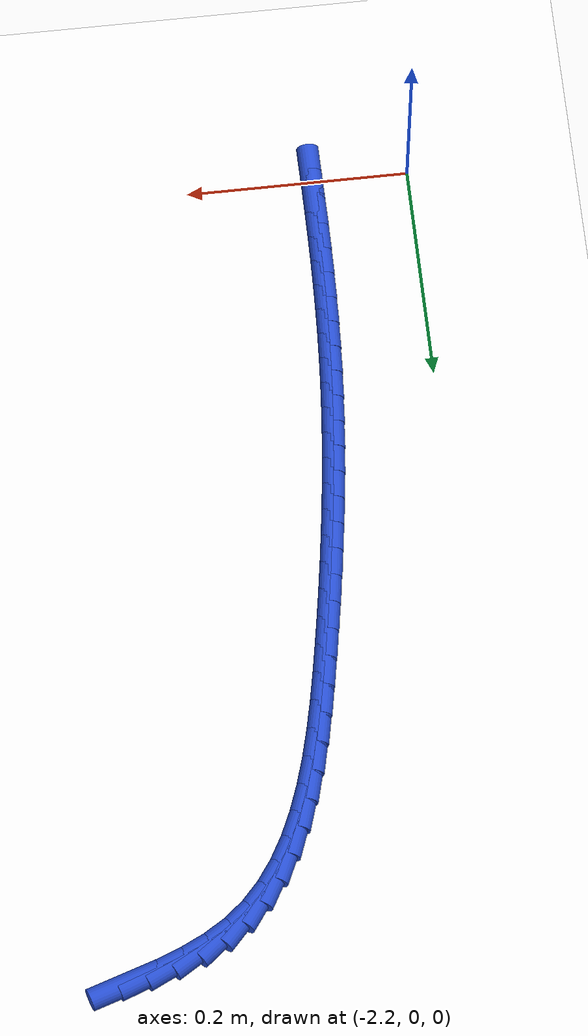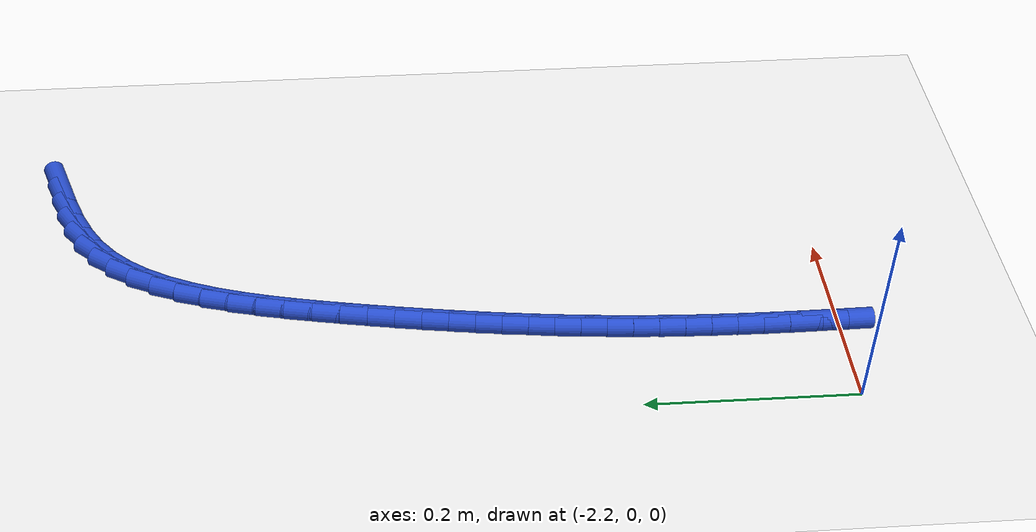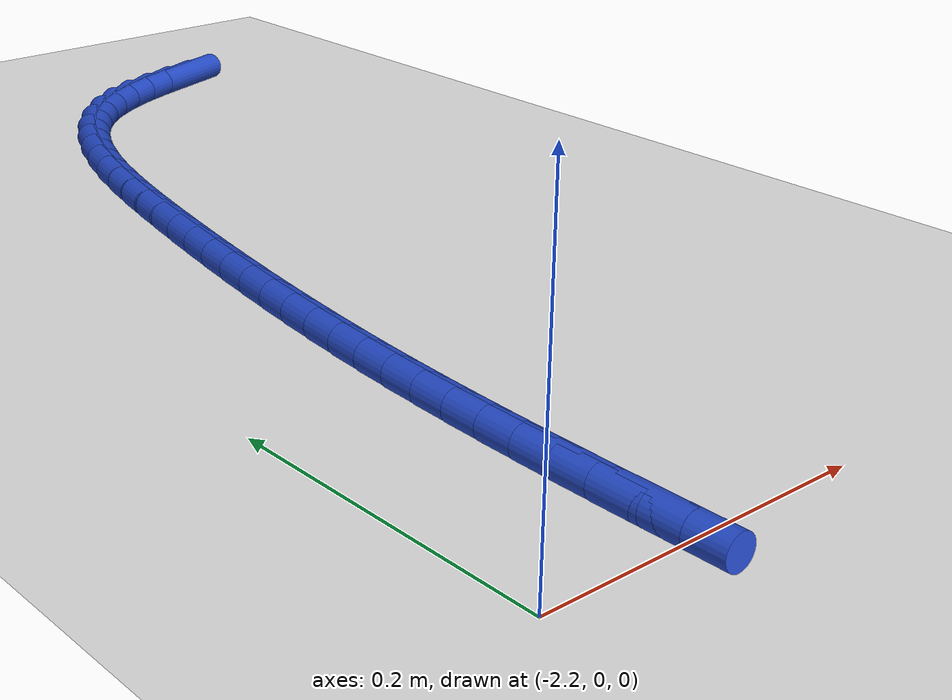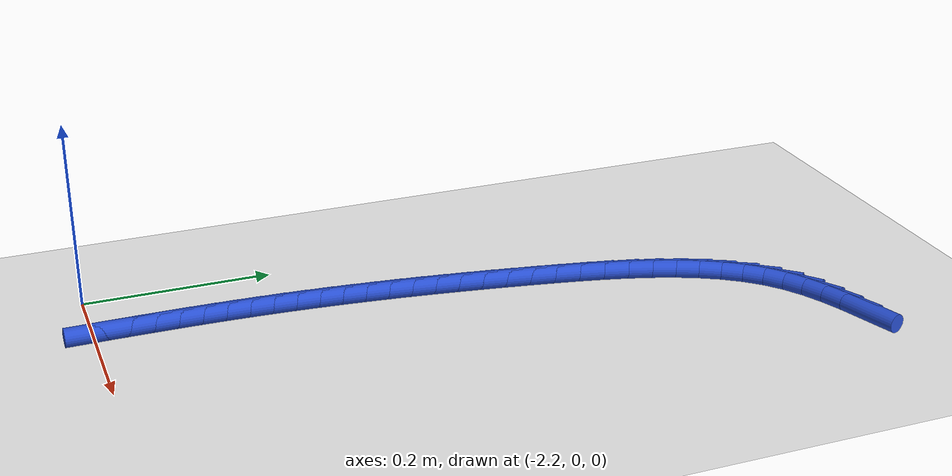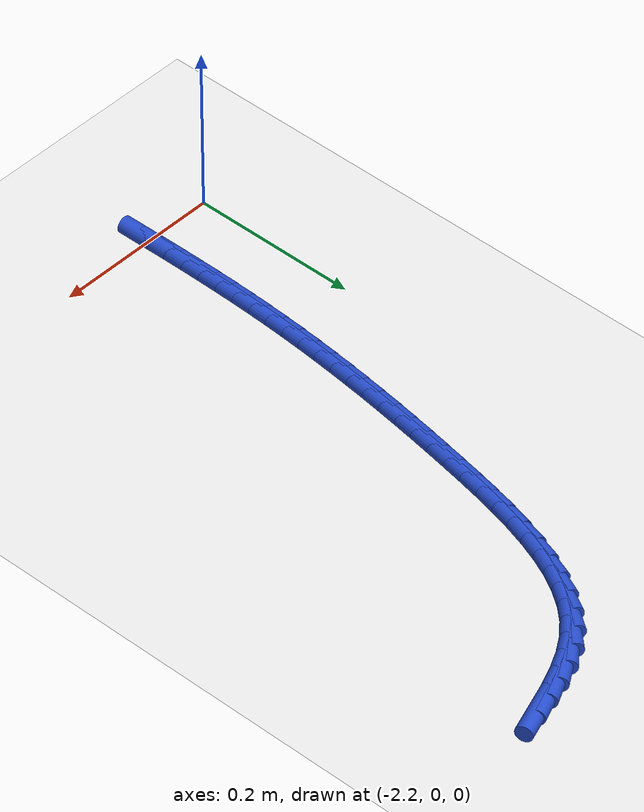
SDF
<sdf version="1.6">
 <world name="default">
  <model name="ground_plane">
   <static>1</static>
   <link name="link">
    <collision name="collision">
     <geometry><plane><normal>0 0 1</normal><size>100 100</size></plane></geometry>
     <surface><friction><ode><mu>100</mu><mu2>50</mu2></ode></friction></surface>
    </collision>
    <visual name="visual">
     <cast_shadows>0</cast_shadows>
     <geometry><plane><normal>0 0 1</normal><size>100 100</size></plane></geometry>
     <material>
      <script><uri>file://media/materials/scripts/gazebo.material</uri><name>Gazebo/WhiteGlow</name></script>
     </material>
    </visual>
   </link>
  </model>
  <model name="line">
   <link name="link_101">
    <pose>-1.8764699375810077 0.7464924101768128 0.01 0 1.57 0.3187868388462398</pose>
    <collision name="collision">
     <geometry><cylinder><radius>0.01</radius><length>0.08</length></cylinder></geometry>
    </collision>
    <visual name="visual">
     <material>
      <script><name>Gazebo/Blue</name><uri>file://media/materials/scripts/gazebo.material</uri></script>
     </material>
     <geometry><cylinder><radius>0.01</radius><length>0.08</length></cylinder></geometry>
    </visual>
   </link>
   <link name="link_102">
    <pose>-1.9006316011082474 0.738518008817483 0.01 0 1.57 0.37422897279329503</pose>
    <collision name="collision">
     <geometry><cylinder><radius>0.01</radius><length>0.08</length></cylinder></geometry>
    </collision>
    <visual name="visual">
     <material>
      <script><name>Gazebo/Blue</name><uri>file://media/materials/scripts/gazebo.material</uri></script>
     </material>
     <geometry><cylinder><radius>0.01</radius><length>0.08</length></cylinder></geometry>
    </visual>
   </link>
   <link name="link_103">
    <pose>-1.9237383555211849 0.7294431463292705 0.01 0 1.57 0.45403174726936335</pose>
    <collision name="collision">
     <geometry><cylinder><radius>0.01</radius><length>0.08</length></cylinder></geometry>
    </collision>
    <visual name="visual">
     <material>
      <script><name>Gazebo/Blue</name><uri>file://media/materials/scripts/gazebo.material</uri></script>
     </material>
     <geometry><cylinder><radius>0.01</radius><length>0.08</length></cylinder></geometry>
    </visual>
   </link>
   <link name="link_104">
    <pose>-1.9454503250788233 0.7188468948974015 0.01 0 1.57 0.5604958490736239</pose>
    <collision name="collision">
     <geometry><cylinder><radius>0.01</radius><length>0.08</length></cylinder></geometry>
    </collision>
    <visual name="visual">
     <material>
      <script><name>Gazebo/Blue</name><uri>file://media/materials/scripts/gazebo.material</uri></script>
     </material>
     <geometry><cylinder><radius>0.01</radius><length>0.08</length></cylinder></geometry>
    </visual>
   </link>
   <link name="link_105">
    <pose>-1.965427634040164 0.7063083267071008 0.01 0 1.57 0.6935986492664042</pose>
    <collision name="collision">
     <geometry><cylinder><radius>0.01</radius><length>0.08</length></cylinder></geometry>
    </collision>
    <visual name="visual">
     <material>
      <script><name>Gazebo/Blue</name><uri>file://media/materials/scripts/gazebo.material</uri></script>
     </material>
     <geometry><cylinder><radius>0.01</radius><length>0.08</length></cylinder></geometry>
    </visual>
   </link>
   <link name="link_106">
    <pose>-1.983338431341879 0.6914172158567012 0.01 0 1.57 0.8332733366222078</pose>
    <collision name="collision">
     <geometry><cylinder><radius>0.01</radius><length>0.08</length></cylinder></geometry>
    </collision>
    <visual name="visual">
     <material>
      <script><name>Gazebo/Blue</name><uri>file://media/materials/scripts/gazebo.material</uri></script>
     </material>
     <geometry><cylinder><radius>0.01</radius><length>0.08</length></cylinder></geometry>
    </visual>
   </link>
   <link name="link_107">
    <pose>-1.9990892063851955 0.6740811933164017 0.01 0 1.57 0.956186543259208</pose>
    <collision name="collision">
     <geometry><cylinder><radius>0.01</radius><length>0.08</length></cylinder></geometry>
    </collision>
    <visual name="visual">
     <material>
      <script><name>Gazebo/Blue</name><uri>file://media/materials/scripts/gazebo.material</uri></script>
     </material>
     <geometry><cylinder><radius>0.01</radius><length>0.08</length></cylinder></geometry>
    </visual>
   </link>
   <link name="link_108">
    <pose>-2.012859149996093 0.6545715715738736 0.01 0 1.57 1.060175459598582</pose>
    <collision name="collision">
     <geometry><cylinder><radius>0.01</radius><length>0.08</length></cylinder></geometry>
    </collision>
    <visual name="visual">
     <material>
      <script><name>Gazebo/Blue</name><uri>file://media/materials/scripts/gazebo.material</uri></script>
     </material>
     <geometry><cylinder><radius>0.01</radius><length>0.08</length></cylinder></geometry>
    </visual>
   </link>
   <link name="link_109">
    <pose>-2.0248423889682705 0.6331795821011131 0.01 0 1.57 1.1461977738436202</pose>
    <collision name="collision">
     <geometry><cylinder><radius>0.01</radius><length>0.08</length></cylinder></geometry>
    </collision>
    <visual name="visual">
     <material>
      <script><name>Gazebo/Blue</name><uri>file://media/materials/scripts/gazebo.material</uri></script>
     </material>
     <geometry><cylinder><radius>0.01</radius><length>0.08</length></cylinder></geometry>
    </visual>
   </link>
   <link name="link_110">
    <pose>-2.035233050095425 0.6101964563701154 0.01 0 1.57 1.2161451746378364</pose>
    <collision name="collision">
     <geometry><cylinder><radius>0.01</radius><length>0.08</length></cylinder></geometry>
    </collision>
    <visual name="visual">
     <material>
      <script><name>Gazebo/Blue</name><uri>file://media/materials/scripts/gazebo.material</uri></script>
     </material>
     <geometry><cylinder><radius>0.01</radius><length>0.08</length></cylinder></geometry>
    </visual>
   </link>
   <link name="link_111">
    <pose>-2.0442252601712543 0.5859134258528768 0.01 0 1.57 1.2720870836765428</pose>
    <collision name="collision">
     <geometry><cylinder><radius>0.01</radius><length>0.08</length></cylinder></geometry>
    </collision>
    <visual name="visual">
     <material>
      <script><name>Gazebo/Blue</name><uri>file://media/materials/scripts/gazebo.material</uri></script>
     </material>
     <geometry><cylinder><radius>0.01</radius><length>0.08</length></cylinder></geometry>
    </visual>
   </link>
   <link name="link_112">
    <pose>-2.0520131459894575 0.5606217220213925 0.01 0 1.57 1.3158769633715572</pose>
    <collision name="collision">
     <geometry><cylinder><radius>0.01</radius><length>0.08</length></cylinder></geometry>
    </collision>
    <visual name="visual">
     <material>
      <script><name>Gazebo/Blue</name><uri>file://media/materials/scripts/gazebo.material</uri></script>
     </material>
     <geometry><cylinder><radius>0.01</radius><length>0.08</length></cylinder></geometry>
    </visual>
   </link>
   <link name="link_113">
    <pose>-2.058790834343731 0.5346125763476589 0.01 0 1.57 1.3489900130874801</pose>
    <collision name="collision">
     <geometry><cylinder><radius>0.01</radius><length>0.08</length></cylinder></geometry>
    </collision>
    <visual name="visual">
     <material>
      <script><name>Gazebo/Blue</name><uri>file://media/materials/scripts/gazebo.material</uri></script>
     </material>
     <geometry><cylinder><radius>0.01</radius><length>0.08</length></cylinder></geometry>
    </visual>
   </link>
   <link name="link_114">
    <pose>-2.064752452027774 0.5081772203036711 0.01 0 1.57 1.3724742685785012</pose>
    <collision name="collision">
     <geometry><cylinder><radius>0.01</radius><length>0.08</length></cylinder></geometry>
    </collision>
    <visual name="visual">
     <material>
      <script><name>Gazebo/Blue</name><uri>file://media/materials/scripts/gazebo.material</uri></script>
     </material>
     <geometry><cylinder><radius>0.01</radius><length>0.08</length></cylinder></geometry>
    </visual>
   </link>
   <link name="link_115">
    <pose>-2.070092125835284 0.481606885361425 0.01 0 1.57 1.3869592955292074</pose>
    <collision name="collision">
     <geometry><cylinder><radius>0.01</radius><length>0.08</length></cylinder></geometry>
    </collision>
    <visual name="visual">
     <material>
      <script><name>Gazebo/Blue</name><uri>file://media/materials/scripts/gazebo.material</uri></script>
     </material>
     <geometry><cylinder><radius>0.01</radius><length>0.08</length></cylinder></geometry>
    </visual>
   </link>
   <link name="link_116">
    <pose>-2.0750035862577385 0.45519215271353664 0.01 0 1.57 1.3954887827523836</pose>
    <collision name="collision">
     <geometry><cylinder><radius>0.01</radius><length>0.08</length></cylinder></geometry>
    </collision>
    <visual name="visual">
     <material>
      <script><name>Gazebo/Blue</name><uri>file://media/materials/scripts/gazebo.material</uri></script>
     </material>
     <geometry><cylinder><radius>0.01</radius><length>0.08</length></cylinder></geometry>
    </visual>
   </link>
   <link name="link_117">
    <pose>-2.0796206883149413 0.42912535584499045 0.01 0 1.57 1.4039416640582092</pose>
    <collision name="collision">
     <geometry><cylinder><radius>0.01</radius><length>0.08</length></cylinder></geometry>
    </collision>
    <visual name="visual">
     <material>
      <script><name>Gazebo/Blue</name><uri>file://media/materials/scripts/gazebo.material</uri></script>
     </material>
     <geometry><cylinder><radius>0.01</radius><length>0.08</length></cylinder></geometry>
    </visual>
   </link>
   <link name="link_118">
    <pose>-2.0839539615947698 0.40339646756385855 0.01 0 1.57 1.413037859431828</pose>
    <collision name="collision">
     <geometry><cylinder><radius>0.01</radius><length>0.08</length></cylinder></geometry>
    </collision>
    <visual name="visual">
     <material>
      <script><name>Gazebo/Blue</name><uri>file://media/materials/scripts/gazebo.material</uri></script>
     </material>
     <geometry><cylinder><radius>0.01</radius><length>0.08</length></cylinder></geometry>
    </visual>
   </link>
   <link name="link_119">
    <pose>-2.0879987320082707 0.37797051346102156 0.01 0 1.57 1.4227658292672771</pose>
    <collision name="collision">
     <geometry><cylinder><radius>0.01</radius><length>0.08</length></cylinder></geometry>
    </collision>
    <visual name="visual">
     <material>
      <script><name>Gazebo/Blue</name><uri>file://media/materials/scripts/gazebo.material</uri></script>
     </material>
     <geometry><cylinder><radius>0.01</radius><length>0.08</length></cylinder></geometry>
    </visual>
   </link>
   <link name="link_120">
    <pose>-2.0917503254664913 0.3528125191273608 0.01 0 1.57 1.4331077400323173</pose>
    <collision name="collision">
     <geometry><cylinder><radius>0.01</radius><length>0.08</length></cylinder></geometry>
    </collision>
    <visual name="visual">
     <material>
      <script><name>Gazebo/Blue</name><uri>file://media/materials/scripts/gazebo.material</uri></script>
     </material>
     <geometry><cylinder><radius>0.01</radius><length>0.08</length></cylinder></geometry>
    </visual>
   </link>
   <link name="link_121">
    <pose>-2.095204067880479 0.3278875101537568 0.01 0 1.57 1.4440392522482353</pose>
    <collision name="collision">
     <geometry><cylinder><radius>0.01</radius><length>0.08</length></cylinder></geometry>
    </collision>
    <visual name="visual">
     <material>
      <script><name>Gazebo/Blue</name><uri>file://media/materials/scripts/gazebo.material</uri></script>
     </material>
     <geometry><cylinder><radius>0.01</radius><length>0.08</length></cylinder></geometry>
    </visual>
   </link>
   <link name="link_122">
    <pose>-2.0983552851612792 0.30316051213109074 0.01 0 1.57 1.4555294448009872</pose>
    <collision name="collision">
     <geometry><cylinder><radius>0.01</radius><length>0.08</length></cylinder></geometry>
    </collision>
    <visual name="visual">
     <material>
      <script><name>Gazebo/Blue</name><uri>file://media/materials/scripts/gazebo.material</uri></script>
     </material>
     <geometry><cylinder><radius>0.01</radius><length>0.08</length></cylinder></geometry>
    </visual>
   </link>
   <link name="link_123">
    <pose>-2.10119930321994 0.27859655065024375 0.01 0 1.57 1.4675408937641434</pose>
    <collision name="collision">
     <geometry><cylinder><radius>0.01</radius><length>0.08</length></cylinder></geometry>
    </collision>
    <visual name="visual">
     <material>
      <script><name>Gazebo/Blue</name><uri>file://media/materials/scripts/gazebo.material</uri></script>
     </material>
     <geometry><cylinder><radius>0.01</radius><length>0.08</length></cylinder></geometry>
    </visual>
   </link>
   <link name="link_124">
    <pose>-2.1037314479675073 0.254160651302096 0.01 0 1.57 1.4800299187296753</pose>
    <collision name="collision">
     <geometry><cylinder><radius>0.01</radius><length>0.08</length></cylinder></geometry>
    </collision>
    <visual name="visual">
     <material>
      <script><name>Gazebo/Blue</name><uri>file://media/materials/scripts/gazebo.material</uri></script>
     </material>
     <geometry><cylinder><radius>0.01</radius><length>0.08</length></cylinder></geometry>
    </visual>
   </link>
   <link name="link_125">
    <pose>-2.105947045315029 0.22981783967752867 0.01 0 1.57 1.4929470028538565</pose>
    <collision name="collision">
     <geometry><cylinder><radius>0.01</radius><length>0.08</length></cylinder></geometry>
    </collision>
    <visual name="visual">
     <material>
      <script><name>Gazebo/Blue</name><uri>file://media/materials/scripts/gazebo.material</uri></script>
     </material>
     <geometry><cylinder><radius>0.01</radius><length>0.08</length></cylinder></geometry>
    </visual>
   </link>
   <link name="link_126">
    <pose>-2.1078414211735508 0.2055331413674227 0.01 0 1.57 1.50623738474353</pose>
    <collision name="collision">
     <geometry><cylinder><radius>0.01</radius><length>0.08</length></cylinder></geometry>
    </collision>
    <visual name="visual">
     <material>
      <script><name>Gazebo/Blue</name><uri>file://media/materials/scripts/gazebo.material</uri></script>
     </material>
     <geometry><cylinder><radius>0.01</radius><length>0.08</length></cylinder></geometry>
    </visual>
   </link>
   <link name="link_127">
    <pose>-2.10940990145412 0.18127158196265905 0.01 0 1.57 1.519641033281439</pose>
    <collision name="collision">
     <geometry><cylinder><radius>0.01</radius><length>0.08</length></cylinder></geometry>
    </collision>
    <visual name="visual">
     <material>
      <script><name>Gazebo/Blue</name><uri>file://media/materials/scripts/gazebo.material</uri></script>
     </material>
     <geometry><cylinder><radius>0.01</radius><length>0.08</length></cylinder></geometry>
    </visual>
   </link>
   <link name="link_128">
    <pose>-2.1106525442426722 0.157001197184961 0.01 0 1.57 1.532159914413506</pose>
    <collision name="collision">
     <geometry><cylinder><radius>0.01</radius><length>0.08</length></cylinder></geometry>
    </collision>
    <visual name="visual">
     <material>
      <script><name>Gazebo/Blue</name><uri>file://media/materials/scripts/gazebo.material</uri></script>
     </material>
     <geometry><cylinder><radius>0.01</radius><length>0.08</length></cylinder></geometry>
    </visual>
   </link>
   <link name="link_129">
    <pose>-2.1115917588772004 0.13270424036101255 0.01 0 1.57 1.5434872484750597</pose>
    <collision name="collision">
     <geometry><cylinder><radius>0.01</radius><length>0.08</length></cylinder></geometry>
    </collision>
    <visual name="visual">
     <material>
      <script><name>Gazebo/Blue</name><uri>file://media/materials/scripts/gazebo.material</uri></script>
     </material>
     <geometry><cylinder><radius>0.01</radius><length>0.08</length></cylinder></geometry>
    </visual>
   </link>
   <link name="link_130">
    <pose>-2.112256547424824 0.10836715844468756 0.01 0 1.57 1.553604399621811</pose>
    <collision name="collision">
     <geometry><cylinder><radius>0.01</radius><length>0.08</length></cylinder></geometry>
    </collision>
    <visual name="visual">
     <material>
      <script><name>Gazebo/Blue</name><uri>file://media/materials/scripts/gazebo.material</uri></script>
     </material>
     <geometry><cylinder><radius>0.01</radius><length>0.08</length></cylinder></geometry>
    </visual>
   </link>
   <link name="link_131">
    <pose>-2.1126759129020316 0.08397639899375238 0.01 0 1.57 1.5624988023260598</pose>
    <collision name="collision">
     <geometry><cylinder><radius>0.01</radius><length>0.08</length></cylinder></geometry>
    </collision>
    <visual name="visual">
     <material>
      <script><name>Gazebo/Blue</name><uri>file://media/materials/scripts/gazebo.material</uri></script>
     </material>
     <geometry><cylinder><radius>0.01</radius><length>0.08</length></cylinder></geometry>
    </visual>
   </link>
   <link name="link_132">
    <pose>-2.1128788583253124 0.05951840956597361 0.01 0 1.57 1.5701635166498746</pose>
    <collision name="collision">
     <geometry><cylinder><radius>0.01</radius><length>0.08</length></cylinder></geometry>
    </collision>
    <visual name="visual">
     <material>
      <script><name>Gazebo/Blue</name><uri>file://media/materials/scripts/gazebo.material</uri></script>
     </material>
     <geometry><cylinder><radius>0.01</radius><length>0.08</length></cylinder></geometry>
    </visual>
   </link>
   <link name="link_133">
    <pose>-2.1128943867111563 0.03497963771911784 0.01 0 1.57 -1.5649958390894807</pose>
    <collision name="collision">
     <geometry><cylinder><radius>0.01</radius><length>0.08</length></cylinder></geometry>
    </collision>
    <visual name="visual">
     <material>
      <script><name>Gazebo/Blue</name><uri>file://media/materials/scripts/gazebo.material</uri></script>
     </material>
     <geometry><cylinder><radius>0.01</radius><length>0.08</length></cylinder></geometry>
    </visual>
   </link>
   <link name="link_134">
    <pose>-2.112751501076052 0.010346531010951862 0.01 0 1.57 -1.5597908819110002</pose>
    <collision name="collision">
     <geometry><cylinder><radius>0.01</radius><length>0.08</length></cylinder></geometry>
    </collision>
    <visual name="visual">
     <material>
      <script><name>Gazebo/Blue</name><uri>file://media/materials/scripts/gazebo.material</uri></script>
     </material>
     <geometry><cylinder><radius>0.01</radius><length>0.08</length></cylinder></geometry>
    </visual>
   </link>
  </model>
 </world>
</sdf>
